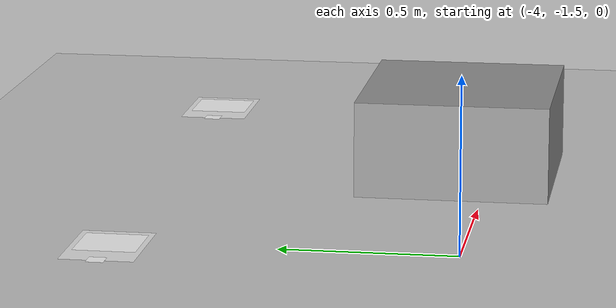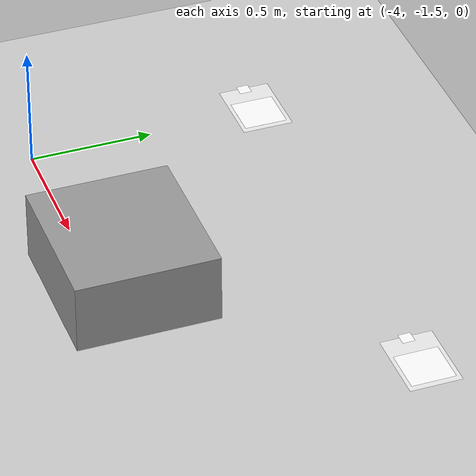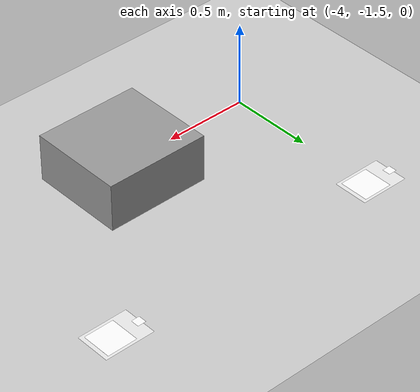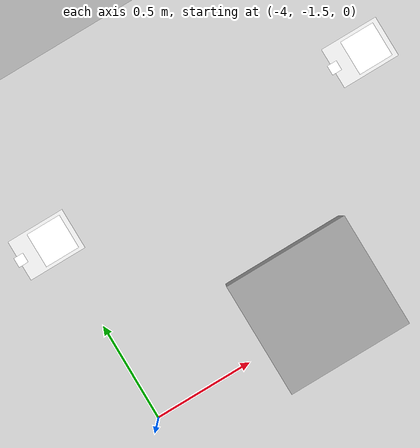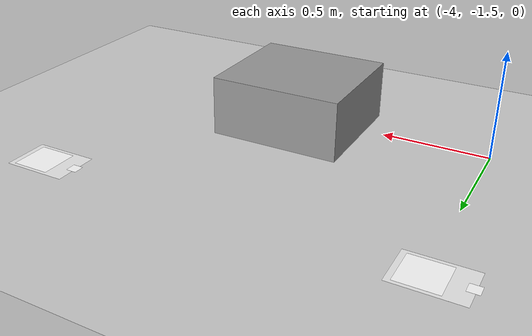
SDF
<sdf version="1.7">
 <world name="default">
  <model name="ground_plane">
   <static>1</static>
   <link name="link">
    <collision name="collision">
     <geometry><plane><normal>0 0 1</normal><size>100 100</size></plane></geometry>
     <surface>
      <contact><collide_bitmask>65535</collide_bitmask></contact>
      <friction><ode><mu>100</mu><mu2>50</mu2></ode></friction>
     </surface>
    </collision>
    <visual name="visual">
     <cast_shadows>0</cast_shadows>
     <geometry><plane><normal>0 0 1</normal><size>100 100</size></plane></geometry>
     <material>
      <script><uri>file://media/materials/scripts/gazebo.material</uri><name>Gazebo/Grey</name></script>
     </material>
    </visual>
   </link>
  </model>
  <model name="aruco_visual_marker_5_pad">
   <frame name="aruco_visual_marker_5::__model__" attached_to="aruco_visual_marker_5::marker">
    <pose relative_to="__model__">0 0 0 0 -0 0</pose>
   </frame>
   <link name="aruco_visual_marker_5::marker">
    <pose relative_to="aruco_visual_marker_5::__model__">0 0 0 0 -0 0</pose>
    <visual name="visual">
     <geometry><box><size>0.1778 0.1778 1e-05</size></box></geometry>
     <material>
      <script>
       <uri>model://aruco_visual_marker_5/materials/scripts</uri>
       <uri>model://aruco_visual_marker_5/materials/textures</uri>
       <name>ArucoVisualMarker5/Marker</name>
      </script>
      <ambient>1 1 1 1</ambient>
      <diffuse>1 1 1 1</diffuse>
      <specular>0 0 0 1</specular>
      <emissive>1 1 1 0</emissive>
      <shader type="vertex"><normal_map>__default__</normal_map></shader>
     </material>
    </visual>
    <collision name="collision"><geometry><box><size>0.1778 0.1778 1e-05</size></box></geometry></collision>
   </link>
   <link name="aruco_visual_marker_5::marker_pad">
    <pose relative_to="aruco_visual_marker_5::marker">0 0 -1e-05 0 -0 0</pose>
    <visual name="visual">
     <geometry><box><size>0.1778 0.1778 1e-05</size></box></geometry>
     <material>
      <lighting>1</lighting>
      <script><uri>file://media/materials/scripts/gazebo.material</uri><name>Gazebo/White</name></script>
      <ambient>0.3 0.3 0.3 1</ambient>
      <diffuse>0.7 0.7 0.7 1</diffuse>
      <specular>0.01 0.01 0.01 1</specular>
      <emissive>1 1 1 0</emissive>
      <shader type="vertex"><normal_map>__default__</normal_map></shader>
     </material>
    </visual>
    <collision name="collision"><geometry><box><size>0.1778 0.1778 1e-05</size></box></geometry></collision>
   </link>
   <joint name="aruco_visual_marker_5::marker_JOINT_marker_pad" type="revolute">
    <parent>aruco_visual_marker_5::marker</parent>
    <child>aruco_visual_marker_5::marker_pad</child>
    <axis>
     <xyz>0 0 1</xyz>
     <limit><upper>0</upper><lower>0</lower></limit>
     <dynamics><spring_reference>0</spring_reference><spring_stiffness>0</spring_stiffness></dynamics>
    </axis>
   </joint>
   <static>1</static>
   <link name="marker_pad_large">
    <pose relative_to="aruco_visual_marker_5::marker">-0.035 0 -1e-05 0 -0 0</pose>
    <visual name="visual">
     <geometry><box><size>0.297 0.21 1e-05</size></box></geometry>
     <material>
      <lighting>1</lighting>
      <script><uri>file://media/materials/scripts/gazebo.material</uri><name>Gazebo/White</name></script>
      <ambient>0.3 0.3 0.3 1</ambient>
      <diffuse>0.7 0.7 0.7 1</diffuse>
      <specular>0.01 0.01 0.01 1</specular>
      <emissive>1 1 1 0</emissive>
      <shader type="vertex"><normal_map>__default__</normal_map></shader>
     </material>
    </visual>
    <collision name="collision">
     <geometry><box><size>0.297 0.21 1e-05</size></box></geometry>
     <surface>
      <friction>
       <ode><mu>1</mu><mu2>1</mu2><fdir1>0 0 0</fdir1><slip1>0</slip1><slip2>0</slip2></ode>
       <torsional>
        <coefficient>1</coefficient>
        <patch_radius>0</patch_radius>
        <surface_radius>0</surface_radius>
        <use_patch_radius>1</use_patch_radius>
        <ode><slip>0</slip></ode>
       </torsional>
      </friction>
      <bounce><restitution_coefficient>0</restitution_coefficient><threshold>1e+06</threshold></bounce>
      <contact>
       <collide_without_contact>0</collide_without_contact>
       <collide_without_contact_bitmask>1</collide_without_contact_bitmask>
       <collide_bitmask>1</collide_bitmask>
       <ode>
        <soft_cfm>0</soft_cfm>
        <soft_erp>0.2</soft_erp>
        <kp>1e+13</kp>
        <kd>1</kd>
        <max_vel>0.01</max_vel>
        <min_depth>0</min_depth>
       </ode>
       <bullet>
        <split_impulse>1</split_impulse>
        <split_impulse_penetration_threshold>-0.01</split_impulse_penetration_threshold>
        <soft_cfm>0</soft_cfm>
        <soft_erp>0.2</soft_erp>
        <kp>1e+13</kp>
        <kd>1</kd>
       </bullet>
      </contact>
     </surface>
    </collision>
   </link>
   <link name="marker_num">
    <pose relative_to="marker_pad_large">-0.14 0 1e-05 0 -0 0</pose>
    <visual name="visual">
     <geometry><box><size>0.05 0.05 1e-05</size></box></geometry>
     <material>
      <script>
       <uri>model://aruco_visual_marker_5_pad/materials/scripts</uri>
       <uri>model://aruco_visual_marker_5_pad/materials/textures</uri>
       <name>ArucoVisualMarker5/Num</name>
      </script>
      <ambient>1 1 1 1</ambient>
      <diffuse>1 1 1 1</diffuse>
      <specular>0 0 0 1</specular>
      <emissive>1 1 1 0</emissive>
      <shader type="vertex"><normal_map>__default__</normal_map></shader>
     </material>
    </visual>
    <collision name="collision">
     <geometry><box><size>0.05 0.05 1e-05</size></box></geometry>
     <surface>
      <friction>
       <ode><mu>1</mu><mu2>1</mu2><fdir1>0 0 0</fdir1><slip1>0</slip1><slip2>0</slip2></ode>
       <torsional>
        <coefficient>1</coefficient>
        <patch_radius>0</patch_radius>
        <surface_radius>0</surface_radius>
        <use_patch_radius>1</use_patch_radius>
        <ode><slip>0</slip></ode>
       </torsional>
      </friction>
      <bounce><restitution_coefficient>0</restitution_coefficient><threshold>1e+06</threshold></bounce>
      <contact>
       <collide_without_contact>0</collide_without_contact>
       <collide_without_contact_bitmask>1</collide_without_contact_bitmask>
       <collide_bitmask>1</collide_bitmask>
       <ode>
        <soft_cfm>0</soft_cfm>
        <soft_erp>0.2</soft_erp>
        <kp>1e+13</kp>
        <kd>1</kd>
        <max_vel>0.01</max_vel>
        <min_depth>0</min_depth>
       </ode>
       <bullet>
        <split_impulse>1</split_impulse>
        <split_impulse_penetration_threshold>-0.01</split_impulse_penetration_threshold>
        <soft_cfm>0</soft_cfm>
        <soft_erp>0.2</soft_erp>
        <kp>1e+13</kp>
        <kd>1</kd>
       </bullet>
      </contact>
     </surface>
    </collision>
   </link>
   <joint name="marker_JOINT_marker_pad_large" type="revolute">
    <parent>aruco_visual_marker_5::marker</parent>
    <child>marker_pad_large</child>
    <axis>
     <xyz>0 0 1</xyz>
     <limit><upper>0</upper><lower>0</lower></limit>
     <dynamics><spring_reference>0</spring_reference><spring_stiffness>0</spring_stiffness></dynamics>
    </axis>
   </joint>
   <joint name="pad_large_JOINT_marker_num" type="revolute">
    <parent>marker_pad_large</parent>
    <child>marker_num</child>
    <axis>
     <xyz>0 0 1</xyz>
     <limit><upper>0</upper><lower>0</lower></limit>
     <dynamics><spring_reference>0</spring_reference><spring_stiffness>0</spring_stiffness></dynamics>
    </axis>
   </joint>
   <static>1</static>
   <pose>-3.99649 -0.533637 0 0 -0 0</pose>
  </model>
  <model name="aruco_visual_marker_6_pad">
   <frame name="aruco_visual_marker_6::__model__" attached_to="aruco_visual_marker_6::marker">
    <pose relative_to="__model__">0 0 0 0 -0 0</pose>
   </frame>
   <link name="aruco_visual_marker_6::marker">
    <pose relative_to="aruco_visual_marker_6::__model__">0 0 0 0 -0 0</pose>
    <visual name="visual">
     <geometry><box><size>0.1778 0.1778 1e-05</size></box></geometry>
     <material>
      <script>
       <uri>model://aruco_visual_marker_6/materials/scripts</uri>
       <uri>model://aruco_visual_marker_6/materials/textures</uri>
       <name>ArucoVisualMarker6/Marker</name>
      </script>
      <ambient>1 1 1 1</ambient>
      <diffuse>1 1 1 1</diffuse>
      <specular>0 0 0 1</specular>
      <emissive>1 1 1 0</emissive>
      <shader type="vertex"><normal_map>__default__</normal_map></shader>
     </material>
    </visual>
    <collision name="collision"><geometry><box><size>0.1778 0.1778 1e-05</size></box></geometry></collision>
   </link>
   <link name="aruco_visual_marker_6::marker_pad">
    <pose relative_to="aruco_visual_marker_6::marker">0 0 -1e-05 0 -0 0</pose>
    <visual name="visual">
     <geometry><box><size>0.1778 0.1778 1e-05</size></box></geometry>
     <material>
      <lighting>1</lighting>
      <script><uri>file://media/materials/scripts/gazebo.material</uri><name>Gazebo/White</name></script>
      <ambient>0.3 0.3 0.3 1</ambient>
      <diffuse>0.7 0.7 0.7 1</diffuse>
      <specular>0.01 0.01 0.01 1</specular>
      <emissive>1 1 1 0</emissive>
      <shader type="vertex"><normal_map>__default__</normal_map></shader>
     </material>
    </visual>
    <collision name="collision"><geometry><box><size>0.1778 0.1778 1e-05</size></box></geometry></collision>
   </link>
   <joint name="aruco_visual_marker_6::marker_JOINT_marker_pad" type="revolute">
    <parent>aruco_visual_marker_6::marker</parent>
    <child>aruco_visual_marker_6::marker_pad</child>
    <axis>
     <xyz>0 0 1</xyz>
     <limit><upper>0</upper><lower>0</lower></limit>
     <dynamics><spring_reference>0</spring_reference><spring_stiffness>0</spring_stiffness></dynamics>
    </axis>
   </joint>
   <static>1</static>
   <link name="marker_pad_large">
    <pose relative_to="aruco_visual_marker_6::marker">-0.035 0 -1e-05 0 -0 0</pose>
    <visual name="visual">
     <geometry><box><size>0.297 0.21 1e-05</size></box></geometry>
     <material>
      <lighting>1</lighting>
      <script><uri>file://media/materials/scripts/gazebo.material</uri><name>Gazebo/White</name></script>
      <ambient>0.3 0.3 0.3 1</ambient>
      <diffuse>0.7 0.7 0.7 1</diffuse>
      <specular>0.01 0.01 0.01 1</specular>
      <emissive>1 1 1 0</emissive>
      <shader type="vertex"><normal_map>__default__</normal_map></shader>
     </material>
    </visual>
    <collision name="collision">
     <geometry><box><size>0.297 0.21 1e-05</size></box></geometry>
     <surface>
      <friction>
       <ode><mu>1</mu><mu2>1</mu2><fdir1>0 0 0</fdir1><slip1>0</slip1><slip2>0</slip2></ode>
       <torsional>
        <coefficient>1</coefficient>
        <patch_radius>0</patch_radius>
        <surface_radius>0</surface_radius>
        <use_patch_radius>1</use_patch_radius>
        <ode><slip>0</slip></ode>
       </torsional>
      </friction>
      <bounce><restitution_coefficient>0</restitution_coefficient><threshold>1e+06</threshold></bounce>
      <contact>
       <collide_without_contact>0</collide_without_contact>
       <collide_without_contact_bitmask>1</collide_without_contact_bitmask>
       <collide_bitmask>1</collide_bitmask>
       <ode>
        <soft_cfm>0</soft_cfm>
        <soft_erp>0.2</soft_erp>
        <kp>1e+13</kp>
        <kd>1</kd>
        <max_vel>0.01</max_vel>
        <min_depth>0</min_depth>
       </ode>
       <bullet>
        <split_impulse>1</split_impulse>
        <split_impulse_penetration_threshold>-0.01</split_impulse_penetration_threshold>
        <soft_cfm>0</soft_cfm>
        <soft_erp>0.2</soft_erp>
        <kp>1e+13</kp>
        <kd>1</kd>
       </bullet>
      </contact>
     </surface>
    </collision>
   </link>
   <link name="marker_num">
    <pose relative_to="marker_pad_large">-0.14 0 1e-05 0 -0 0</pose>
    <visual name="visual">
     <geometry><box><size>0.05 0.05 1e-05</size></box></geometry>
     <material>
      <script>
       <uri>model://aruco_visual_marker_6_pad/materials/scripts</uri>
       <uri>model://aruco_visual_marker_6_pad/materials/textures</uri>
       <name>ArucoVisualMarker6/Num</name>
      </script>
      <ambient>1 1 1 1</ambient>
      <diffuse>1 1 1 1</diffuse>
      <specular>0 0 0 1</specular>
      <emissive>1 1 1 0</emissive>
      <shader type="vertex"><normal_map>__default__</normal_map></shader>
     </material>
    </visual>
    <collision name="collision">
     <geometry><box><size>0.05 0.05 1e-05</size></box></geometry>
     <surface>
      <friction>
       <ode><mu>1</mu><mu2>1</mu2><fdir1>0 0 0</fdir1><slip1>0</slip1><slip2>0</slip2></ode>
       <torsional>
        <coefficient>1</coefficient>
        <patch_radius>0</patch_radius>
        <surface_radius>0</surface_radius>
        <use_patch_radius>1</use_patch_radius>
        <ode><slip>0</slip></ode>
       </torsional>
      </friction>
      <bounce><restitution_coefficient>0</restitution_coefficient><threshold>1e+06</threshold></bounce>
      <contact>
       <collide_without_contact>0</collide_without_contact>
       <collide_without_contact_bitmask>1</collide_without_contact_bitmask>
       <collide_bitmask>1</collide_bitmask>
       <ode>
        <soft_cfm>0</soft_cfm>
        <soft_erp>0.2</soft_erp>
        <kp>1e+13</kp>
        <kd>1</kd>
        <max_vel>0.01</max_vel>
        <min_depth>0</min_depth>
       </ode>
       <bullet>
        <split_impulse>1</split_impulse>
        <split_impulse_penetration_threshold>-0.01</split_impulse_penetration_threshold>
        <soft_cfm>0</soft_cfm>
        <soft_erp>0.2</soft_erp>
        <kp>1e+13</kp>
        <kd>1</kd>
       </bullet>
      </contact>
     </surface>
    </collision>
   </link>
   <joint name="marker_JOINT_marker_pad_large" type="revolute">
    <parent>aruco_visual_marker_6::marker</parent>
    <child>marker_pad_large</child>
    <axis>
     <xyz>0 0 1</xyz>
     <limit><upper>0</upper><lower>0</lower></limit>
     <dynamics><spring_reference>0</spring_reference><spring_stiffness>0</spring_stiffness></dynamics>
    </axis>
   </joint>
   <joint name="pad_large_JOINT_marker_num" type="revolute">
    <parent>marker_pad_large</parent>
    <child>marker_num</child>
    <axis>
     <xyz>0 0 1</xyz>
     <limit><upper>0</upper><lower>0</lower></limit>
     <dynamics><spring_reference>0</spring_reference><spring_stiffness>0</spring_stiffness></dynamics>
    </axis>
   </joint>
   <static>1</static>
   <pose>-2.26796 -0.522966 0 0 -0 0</pose>
  </model>
  <model name="unit_box_0">
   <pose>-3.0964 -1.41033 0.141219 0 -0 -4e-06</pose>
   <link name="link">
    <inertial>
     <mass>1</mass>
     <inertia>
      <ixx>0.166667</ixx>
      <ixy>0</ixy>
      <ixz>0</ixz>
      <iyy>0.166667</iyy>
      <iyz>0</iyz>
      <izz>0.166667</izz>
     </inertia>
    </inertial>
    <collision name="collision">
     <geometry><box><size>0.620265 0.567653 0.282438</size></box></geometry>
    </collision>
    <visual name="visual">
     <geometry><box><size>0.620265 0.567653 0.282438</size></box></geometry>
     <material>
      <script><name>Gazebo/Grey</name><uri>file://media/materials/scripts/gazebo.material</uri></script>
     </material>
    </visual>
   </link>
  </model>
 </world>
</sdf>
